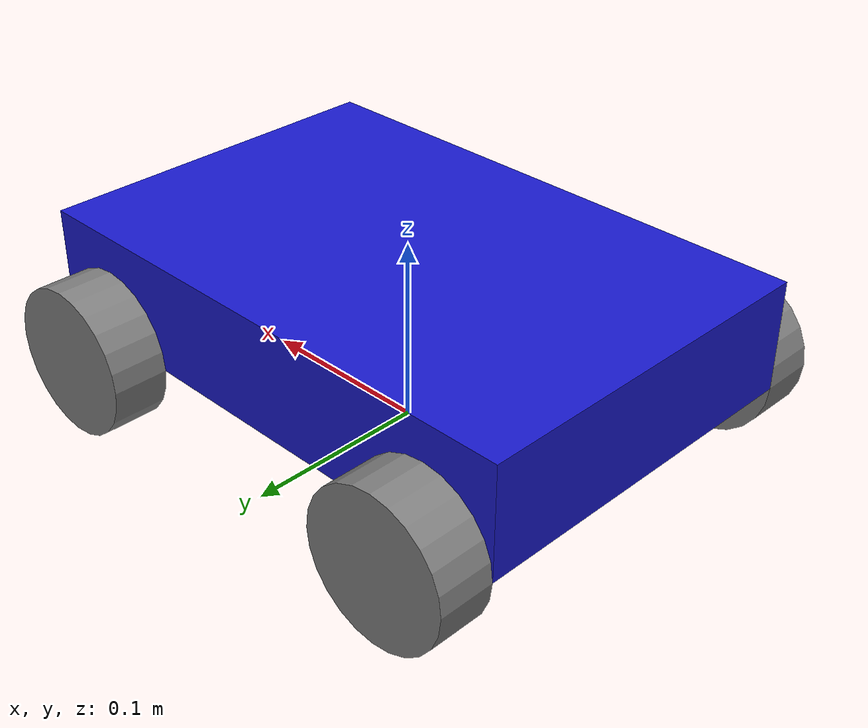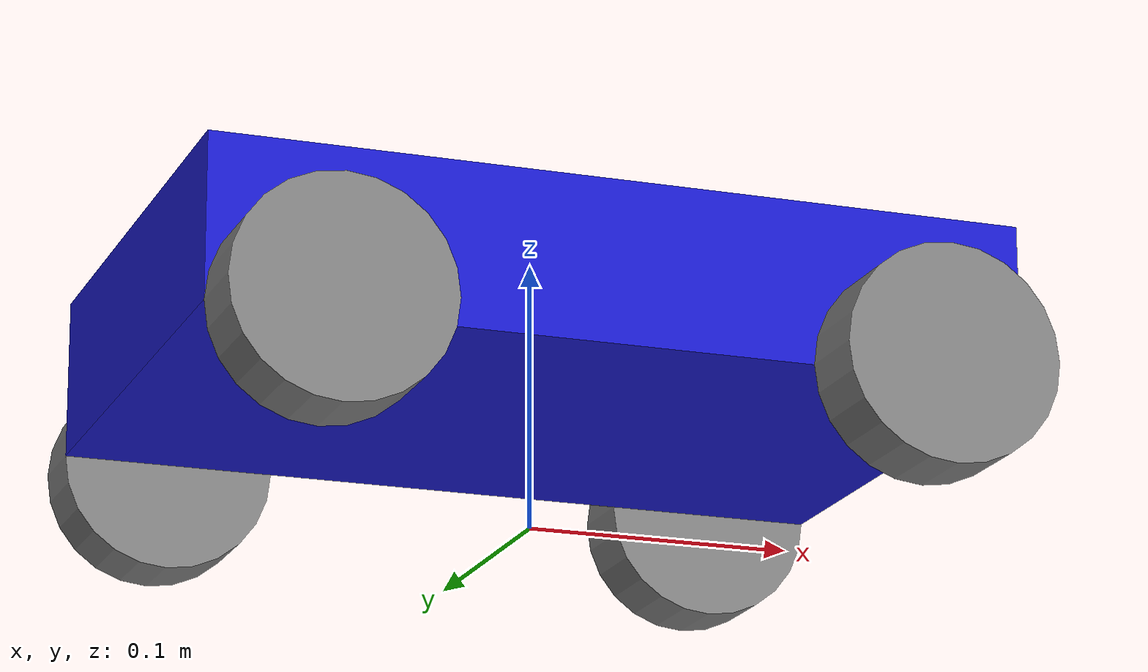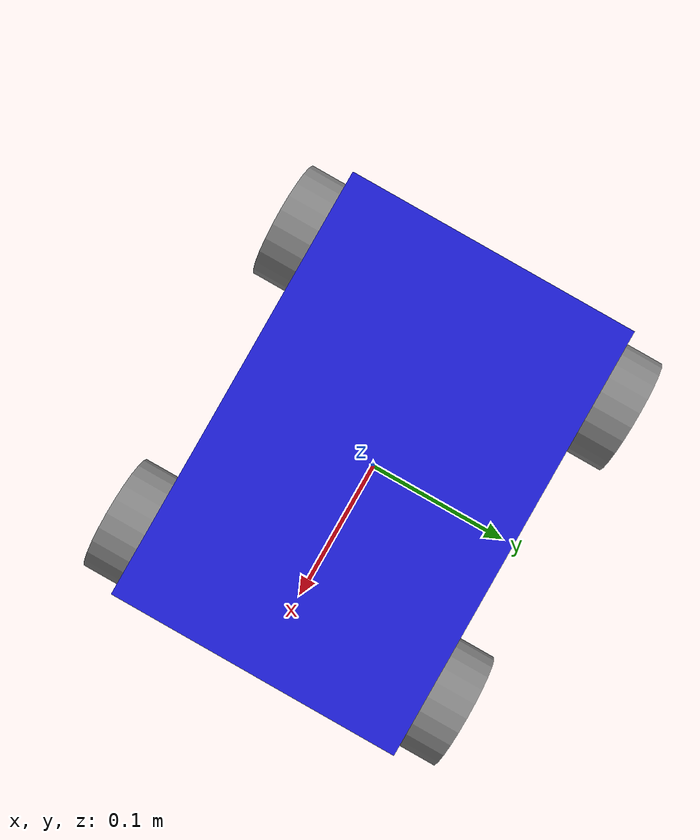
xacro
<?xml version="1.0"?>
<robot xmlns:xacro="http://www.ros.org/wiki/xacro">

    <!-- 车体尺寸参数，单位为米；通过属性集中管理，便于后续调整整车比例。 -->
    <xacro:property name="base_length" value="0.3"/>
    <xacro:property name="base_width" value="0.2"/>
    <xacro:property name="base_height" value="0.06"/>
    <xacro:property name="wheel_radius" value="0.04"/>
    <xacro:property name="wheel_length" value="0.03"/>
    <xacro:property name="base_mass" value="2.0"/>
    <xacro:property name="wheel_mass" value="0.18"/>

    <!-- base_footprint 是投影在地面上的机器人参考坐标系，常用于导航和 TF 树根部。 -->
    <link name="base_footprint"/>

    <!-- base_link 位于车体中心附近，向上抬高一个轮半径，使车轮与地面相切。 -->
    <joint name="base_joint" type="fixed">
        <parent link="base_footprint"/>
        <child link="base_link"/>
        <origin xyz="0 0 ${wheel_radius}" rpy="0 0 0"/>
    </joint>

    <!-- 主车身：蓝色长方体，同时提供 visual 和 collision 方便显示与碰撞检测。 -->
    <link name="base_link">
        <xacro:box_inertial
            mass="${base_mass}"
            x="${base_length}"
            y="${base_width}"
            z="${base_height}"
            origin_xyz="0 0 ${base_height/2}"/>
        <visual>
            <origin xyz="0 0 ${base_height/2}" rpy="0 0 0"/>
            <geometry>
                <box size="${base_length} ${base_width} ${base_height}"/>
            </geometry>
            <material name="blue">
                <color rgba="0.1 0.1 0.8 1.0"/>
            </material>
        </visual>
        <collision>
            <origin xyz="0 0 ${base_height/2}" rpy="0 0 0"/>
            <geometry>
                <box size="${base_length} ${base_width} ${base_height}"/>
            </geometry>
        </collision>
    </link>

    <!-- 车轮宏：通过前后左右的符号参数复用同一套 link/joint 定义。 -->
    <xacro:macro name="roscar_wheel" params="prefix x_reflect y_reflect">
        <!-- 单个车轮：圆柱绕 Y 轴布置，灰色材质仅用于 RViz/Gazebo 可视化。 -->
        <link name="${prefix}_wheel">
            <xacro:wheel_y_inertial
                mass="${wheel_mass}"
                radius="${wheel_radius}"
                length="${wheel_length}"/>
            <visual>
                <origin xyz="0 0 0" rpy="${pi/2} 0 0"/>
                <geometry>
                    <cylinder radius="${wheel_radius}" length="${wheel_length}"/>
                </geometry>
                <material name="gray">
                    <color rgba="0.5 0.5 0.5 1.0"/>
                </material>
            </visual>
            <collision>
                <origin xyz="0 0 0" rpy="${pi/2} 0 0"/>
                <geometry>
                    <cylinder radius="${wheel_radius}" length="${wheel_length}"/>
                </geometry>
            </collision>
        </link>

        <!-- 连续关节表示轮子可无限旋转；正速度应驱动车体沿 base_link +X 前进。 -->
        <joint name="${prefix}_wheel_joint" type="continuous">
            <parent link="base_link"/>
            <child link="${prefix}_wheel"/>
            <origin xyz="${x_reflect * (base_length/2 - wheel_radius)} ${y_reflect * (base_width/2 + wheel_length/2)} 0" rpy="0 0 0"/>
            <axis xyz="0 1 0"/>
        </joint>
    </xacro:macro>

    <!-- 实例化四个车轮：x_reflect 控制前后位置，y_reflect 控制左右位置。 -->
    <xacro:roscar_wheel prefix="rear_left" x_reflect="-1" y_reflect="1" />
    <xacro:roscar_wheel prefix="rear_right" x_reflect="-1" y_reflect="-1" />
    <xacro:roscar_wheel prefix="front_left" x_reflect="1" y_reflect="1" />
    <xacro:roscar_wheel prefix="front_right" x_reflect="1" y_reflect="-1" />

</robot>
